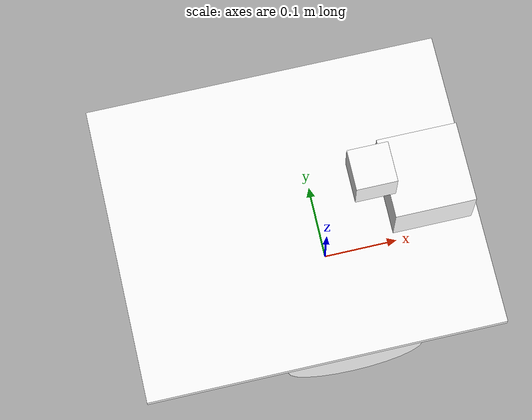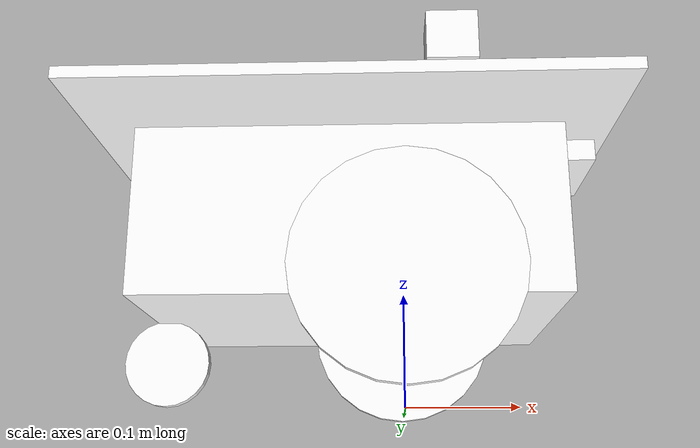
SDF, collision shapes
<?xml version='1.0'?>
<sdf version='1.6'>
  <model name='p3dx'>
    <link name='base_link'>
      <pose frame=''>0 0 0 0 -0 0</pose>
      <inertial>
        <pose frame=''>-0.049981 0 0.000673 0 -0 0</pose>
        <mass>3.51011</mass>
        <inertia>
          <ixx>3.00055</ixx>
          <ixy>0</ixy>
          <ixz>0</ixz>
          <iyy>3.00055</iyy>
          <iyz>0</iyz>
          <izz>3</izz>
        </inertia>
      </inertial>
      <self_collide>0</self_collide>
      <kinematic>0</kinematic>
      <velocity_decay/>
      <sensor type="camera" name="camera">
        <update_rate>30.0</update_rate>
        <camera name="head">
          <horizontal_fov>1.5708</horizontal_fov>
          <image>
            <width>320</width>
            <height>240</height>
            <format>R8G8B8</format>
          </image>
          <clip>
            <near>0.02</near>
            <far>300</far>
          </clip>
        </camera>
        <plugin name="camera_controller" filename="libgazebo_ros_camera.so">
          <alwaysOn>true</alwaysOn>
          <updateRate>0.0</updateRate>
          <cameraName>p3dx/camera</cameraName>
          <imageTopicName>image_raw</imageTopicName>
          <cameraInfoTopicName>camera_info</cameraInfoTopicName>
          <frameName>camera</frameName>
          <hackBaseline>0.07</hackBaseline>
          <distortionK1>0.0</distortionK1>
          <distortionK2>0.0</distortionK2>
          <distortionK3>0.0</distortionK3>
          <distortionT1>0.0</distortionT1>
          <distortionT2>0.0</distortionT2>
        </plugin>
        <pose frame=''>0.05 0 0.35 0 0.25 0</pose>
      </sensor>
      <sensor name='head_hokuyo_sensor' type='ray'>
        <visualize>0</visualize>
        <update_rate>50</update_rate>
        <ray>
          <scan>
            <horizontal>
              <samples>240</samples>
              <resolution>1</resolution>
              <min_angle>-2.0944</min_angle>
              <max_angle>2.0944</max_angle>
            </horizontal>
            <vertical>
              <samples>1</samples>
              <min_angle>0</min_angle>
              <max_angle>0</max_angle>
            </vertical>
          </scan>
          <range>
            <min>0.1</min>
            <max>5.6</max>
            <resolution>0.01</resolution>
          </range>
          <noise>
            <type>gaussian</type>
            <mean>0</mean>
            <stddev>0.01</stddev>
          </noise>
        </ray>
        <plugin name='gazebo_ros_head_hokuyo_controller' filename='libgazebo_ros_laser.so'>
          <topicName>p3dx/laser/scan</topicName>
          <frameName>lms100</frameName>
          <robotNamespace>/</robotNamespace>
        </plugin>
        <pose frame=''>0.12 0 0.26 0 -0 0</pose>
      </sensor>
      <gravity>1</gravity>
      <visual name='base_link_fixed_joint_lump__base_visual_visual_2'>
        <pose frame=''>-0.045 0 0.234 0 -0 0</pose>
        <geometry>
          <mesh>
            <scale>1 1 1</scale>
            <uri>~/RobotTraining_ROS1_ws/src/RobotTraining_ROS1/RobotTraining_P3dx_Gazebo/p3dx_description_gazebo/meshes/top.stl</uri>
          </mesh>
        </geometry>
        <cast_shadows>1</cast_shadows>
        <transparency>0</transparency>
        <material>
          <shader type='vertex'>
            <normal_map>__default__</normal_map>
          </shader>
          <ambient>0.038 0.038 0.038 1</ambient>
          <diffuse>1 1 1 1</diffuse>
          <specular>0 0 0 1</specular>
          <emissive>0 0 0 1</emissive>
          <script>
            <name>ModelPreview_3::base_link::base_link_fixed_joint_lump__base_visual_visual_2_MATERIAL_</name>
            <uri>__default__</uri>
          </script>
        </material>
      </visual>
      <visual name='base_link_fixed_joint_lump__base_visual_visual'>
        <pose frame=''>-0.045 0 0.148 0 -0 0</pose>
        <geometry>
          <mesh>
            <scale>1 1 1</scale>
            <uri>~/RobotTraining_ROS1_ws/src/RobotTraining_ROS1/RobotTraining_P3dx_Gazebo/p3dx_description_gazebo/meshes/chassis.stl</uri>
          </mesh>
        </geometry>
        <cast_shadows>1</cast_shadows>
        <transparency>0</transparency>
        <material>
          <ambient>0.851 0 0 1</ambient>
          <diffuse>1 1 1 1</diffuse>
          <specular>0 0 0 1</specular>
          <emissive>0 0 0 1</emissive>
          <script>
            <name>ModelPreview_3::base_link::base_link_fixed_joint_lump__base_visual_visual_MATERIAL_</name>
            <uri>__default__</uri>
          </script>
          <shader type='vertex'>
            <normal_map>__default__</normal_map>
          </shader>
        </material>
      </visual>
      <visual name='base_link_fixed_joint_lump__front_sonar_vis_visual_1'>
        <pose frame=''>0.109 0 0.209 0 -0 0</pose>
        <geometry>
          <mesh>
            <scale>1 1 1</scale>
            <uri>~/RobotTraining_ROS1_ws/src/RobotTraining_ROS1/RobotTraining_P3dx_Gazebo/p3dx_description_gazebo/meshes/front_sonar.stl</uri>
          </mesh>
        </geometry>
        <cast_shadows>1</cast_shadows>
        <transparency>0</transparency>
        <material>
          <shader type='vertex'>
            <normal_map>__default__</normal_map>
          </shader>
          <ambient>0.715 0.583 0.21 1</ambient>
          <diffuse>1 1 1 1</diffuse>
          <specular>0 0 0 1</specular>
          <emissive>0 0 0 1</emissive>
          <script>
            <name>ModelPreview_3::base_link::base_link_fixed_joint_lump__front_sonar_vis_visual_1_MATERIAL_</name>
            <uri>__default__</uri>
          </script>
        </material>
      </visual>
      <visual name='base_link_fixed_joint_lump__lms100_visual_3'>
        <pose frame=''>0.12 0 0.26 0 -0 0</pose>
        <geometry>
          <mesh>
            <scale>1 1 1</scale>
            <uri>~/RobotTraining_ROS1_ws/src/RobotTraining_ROS1/RobotTraining_P3dx_Gazebo/p3dx_description_gazebo/meshes/lms100.dae</uri>
          </mesh>
        </geometry>
        <material>
          <script>
            <uri>__default__</uri>
            <name>__default__</name>
          </script>
          <shader type='vertex'>
            <normal_map>__default__</normal_map>
          </shader>
        </material>
        <cast_shadows>1</cast_shadows>
        <transparency>0</transparency>
      </visual>
      <visual name='base_link_fixed_joint_lump__camera_visual_4'>
        <pose frame=''>0.05 0.0 0.35 0 0.25 0</pose>
        <geometry>
          <box>
            <size>0.05 0.05 0.05</size>
          </box>
        </geometry>
        <material>
          <script>
            <uri>__default__</uri>
            <name>__default__</name>
          </script>
          <shader type='vertex'>
            <normal_map>__default__</normal_map>
          </shader>
        </material>
        <cast_shadows>1</cast_shadows>
        <transparency>0</transparency>
      </visual>
      <collision name='base_link_collision'>
        <laser_retro>0</laser_retro>
        <max_contacts>10</max_contacts>
        <pose frame=''>-0.045 0 0.145 0 -0 0</pose>
        <geometry>
          <box>
            <size>0.35 0.25 0.14</size>
          </box>
        </geometry>
        <surface>
          <friction>
            <ode>
              <mu>1</mu>
              <mu2>1</mu2>
              <fdir1>0 0 0</fdir1>
              <slip1>0</slip1>
              <slip2>0</slip2>
            </ode>
            <torsional>
              <coefficient>1</coefficient>
              <patch_radius>0</patch_radius>
              <surface_radius>0</surface_radius>
              <use_patch_radius>1</use_patch_radius>
              <ode>
                <slip>0</slip>
              </ode>
            </torsional>
          </friction>
          <bounce>
            <restitution_coefficient>0</restitution_coefficient>
            <threshold>1e+06</threshold>
          </bounce>
          <contact>
            <collide_without_contact>0</collide_without_contact>
            <collide_without_contact_bitmask>1</collide_without_contact_bitmask>
            <collide_bitmask>1</collide_bitmask>
            <ode>
              <soft_cfm>0</soft_cfm>
              <soft_erp>0.2</soft_erp>
              <kp>1e+13</kp>
              <kd>1</kd>
              <max_vel>0.01</max_vel>
              <min_depth>0</min_depth>
            </ode>
            <bullet>
              <split_impulse>1</split_impulse>
              <split_impulse_penetration_threshold>-0.01</split_impulse_penetration_threshold>
              <soft_cfm>0</soft_cfm>
              <soft_erp>0.2</soft_erp>
              <kp>1e+13</kp>
              <kd>1</kd>
            </bullet>
          </contact>
        </surface>
      </collision>
      <collision name='base_link_fixed_joint_lump__lms100_collision_3'>
        <laser_retro>0</laser_retro>
        <max_contacts>10</max_contacts>
        <pose frame=''>0.12 0 0.26 0 -0 0</pose>
        <geometry>
          <box>
            <size>0.1 0.1 0.1</size>
          </box>
        </geometry>
        <surface>
          <friction>
            <ode>
              <mu>1</mu>
              <mu2>1</mu2>
              <fdir1>0 0 0</fdir1>
              <slip1>0</slip1>
              <slip2>0</slip2>
            </ode>
            <torsional>
              <coefficient>1</coefficient>
              <patch_radius>0</patch_radius>
              <surface_radius>0</surface_radius>
              <use_patch_radius>1</use_patch_radius>
              <ode>
                <slip>0</slip>
              </ode>
            </torsional>
          </friction>
          <bounce>
            <restitution_coefficient>0</restitution_coefficient>
            <threshold>1e+06</threshold>
          </bounce>
          <contact>
            <collide_without_contact>0</collide_without_contact>
            <collide_without_contact_bitmask>1</collide_without_contact_bitmask>
            <collide_bitmask>1</collide_bitmask>
            <ode>
              <soft_cfm>0</soft_cfm>
              <soft_erp>0.2</soft_erp>
              <kp>1e+13</kp>
              <kd>1</kd>
              <max_vel>0.01</max_vel>
              <min_depth>0</min_depth>
            </ode>
            <bullet>
              <split_impulse>1</split_impulse>
              <split_impulse_penetration_threshold>-0.01</split_impulse_penetration_threshold>
              <soft_cfm>0</soft_cfm>
              <soft_erp>0.2</soft_erp>
              <kp>1e+13</kp>
              <kd>1</kd>
            </bullet>
          </contact>
        </surface>
      </collision>
      <collision name='base_link_fixed_joint_lump__front_sonar_collision_1'>
        <laser_retro>0</laser_retro>
        <max_contacts>10</max_contacts>
        <pose frame=''>-0.109 0 0.209 0 -0 0</pose>
        <geometry>
          <box>
            <size>0.001 0.001 0.001</size>
          </box>
        </geometry>
        <surface>
          <friction>
            <ode>
              <mu>1</mu>
              <mu2>1</mu2>
              <fdir1>0 0 0</fdir1>
              <slip1>0</slip1>
              <slip2>0</slip2>
            </ode>
            <torsional>
              <coefficient>1</coefficient>
              <patch_radius>0</patch_radius>
              <surface_radius>0</surface_radius>
              <use_patch_radius>1</use_patch_radius>
              <ode>
                <slip>0</slip>
              </ode>
            </torsional>
          </friction>
          <bounce>
            <restitution_coefficient>0</restitution_coefficient>
            <threshold>1e+06</threshold>
          </bounce>
          <contact>
            <collide_without_contact>0</collide_without_contact>
            <collide_without_contact_bitmask>1</collide_without_contact_bitmask>
            <collide_bitmask>1</collide_bitmask>
            <ode>
              <soft_cfm>0</soft_cfm>
              <soft_erp>0.2</soft_erp>
              <kp>1e+13</kp>
              <kd>1</kd>
              <max_vel>0.01</max_vel>
              <min_depth>0</min_depth>
            </ode>
            <bullet>
              <split_impulse>1</split_impulse>
              <split_impulse_penetration_threshold>-0.01</split_impulse_penetration_threshold>
              <soft_cfm>0</soft_cfm>
              <soft_erp>0.2</soft_erp>
              <kp>1e+13</kp>
              <kd>1</kd>
            </bullet>
          </contact>
        </surface>
      </collision>
      <collision name='base_link_fixed_joint_lump__top_plate_collision_2'>
        <laser_retro>0</laser_retro>
        <max_contacts>10</max_contacts>
        <pose frame=''>-0.045 0 0.234 0 -0 0</pose>
        <geometry>
          <box>
            <size>0.45 0.38 0.01</size>
          </box>
        </geometry>
        <surface>
          <friction>
            <ode>
              <mu>1</mu>
              <mu2>1</mu2>
              <fdir1>0 0 0</fdir1>
              <slip1>0</slip1>
              <slip2>0</slip2>
            </ode>
            <torsional>
              <coefficient>1</coefficient>
              <patch_radius>0</patch_radius>
              <surface_radius>0</surface_radius>
              <use_patch_radius>1</use_patch_radius>
              <ode>
                <slip>0</slip>
              </ode>
            </torsional>
          </friction>
          <bounce>
            <restitution_coefficient>0</restitution_coefficient>
            <threshold>1e+06</threshold>
          </bounce>
          <contact>
            <collide_without_contact>0</collide_without_contact>
            <collide_without_contact_bitmask>1</collide_without_contact_bitmask>
            <collide_bitmask>1</collide_bitmask>
            <ode>
              <soft_cfm>0</soft_cfm>
              <soft_erp>0.2</soft_erp>
              <kp>1e+13</kp>
              <kd>1</kd>
              <max_vel>0.01</max_vel>
              <min_depth>0</min_depth>
            </ode>
            <bullet>
              <split_impulse>1</split_impulse>
              <split_impulse_penetration_threshold>-0.01</split_impulse_penetration_threshold>
              <soft_cfm>0</soft_cfm>
              <soft_erp>0.2</soft_erp>
              <kp>1e+13</kp>
              <kd>1</kd>
            </bullet>
          </contact>
        </surface>
      </collision>
      <collision name='base_link_fixed_joint_lump__camera_collision_4'>
        <laser_retro>0</laser_retro>
        <max_contacts>10</max_contacts>
        <pose frame=''>0.05 0.0 0.35 0 0 0</pose>
        <geometry>
          <box>
            <size>0.05 0.05 0.05</size>
          </box>
        </geometry>
        <surface>
          <friction>
            <ode>
              <mu>1</mu>
              <mu2>1</mu2>
              <fdir1>0 0 0</fdir1>
              <slip1>0</slip1>
              <slip2>0</slip2>
            </ode>
            <torsional>
              <coefficient>1</coefficient>
              <patch_radius>0</patch_radius>
              <surface_radius>0</surface_radius>
              <use_patch_radius>1</use_patch_radius>
              <ode>
                <slip>0</slip>
              </ode>
            </torsional>
          </friction>
          <bounce>
            <restitution_coefficient>0</restitution_coefficient>
            <threshold>1e+06</threshold>
          </bounce>
          <contact>
            <collide_without_contact>0</collide_without_contact>
            <collide_without_contact_bitmask>1</collide_without_contact_bitmask>
            <collide_bitmask>1</collide_bitmask>
            <ode>
              <soft_cfm>0</soft_cfm>
              <soft_erp>0.2</soft_erp>
              <kp>1e+13</kp>
              <kd>1</kd>
              <max_vel>0.01</max_vel>
              <min_depth>0</min_depth>
            </ode>
            <bullet>
              <split_impulse>1</split_impulse>
              <split_impulse_penetration_threshold>-0.01</split_impulse_penetration_threshold>
              <soft_cfm>0</soft_cfm>
              <soft_erp>0.2</soft_erp>
              <kp>1e+13</kp>
              <kd>1</kd>
            </bullet>
          </contact>
        </surface>
      </collision>
    </link>
    <link name='center_wheel'>
      <pose frame=''>-0.211 0 0.039 0 -0 0</pose>
      <inertial>
        <pose frame=''>-0.000318 0 -9.1e-05 0 -0 0</pose>
        <mass>0.11</mass>
        <inertia>
          <ixx>0.0248235</ixx>
          <ixy>0</ixy>
          <ixz>0.00100543</ixz>
          <iyy>0.0304364</iyy>
          <iyz>0</iyz>
          <izz>0.0235281</izz>
        </inertia>
      </inertial>
      <self_collide>0</self_collide>
      <kinematic>0</kinematic>
      <velocity_decay/>
      <gravity>1</gravity>
      <visual name='center_wheel_fixed_joint_lump__base_visual_visual'>
        <pose frame=''>0 0 0 0 -0 0</pose>
        <geometry>
          <mesh>
            <scale>1 1 1</scale>
            <uri>~/RobotTraining_ROS1_ws/src/RobotTraining_ROS1/RobotTraining_P3dx_Gazebo/p3dx_description_gazebo/meshes/center_wheel.stl</uri>
          </mesh>
        </geometry>
        <cast_shadows>1</cast_shadows>
        <transparency>0</transparency>
        <material>
          <ambient>0.117 0.117 0.117 1</ambient>
          <diffuse>1 1 1 1</diffuse>
          <specular>0 0 0 1</specular>
          <emissive>0 0 0 1</emissive>
          <script>
            <name>ModelPreview_1::center_wheel::center_wheel_fixed_joint_lump__base_visual_visual_MATERIAL_</name>
            <uri>__default__</uri>
          </script>
          <shader type='vertex'>
            <normal_map>__default__</normal_map>
          </shader>
        </material>
      </visual>
      <visual name='center_wheel_fixed_joint_lump__base_visual_visual_1'>
        <pose frame=''>-0.0035 0 -0.001 0 -0 0</pose>
        <geometry>
          <mesh>
            <scale>1 1 1</scale>
            <uri>~/RobotTraining_ROS1_ws/src/RobotTraining_ROS1/RobotTraining_P3dx_Gazebo/p3dx_description_gazebo/meshes/center_hubcap.stl</uri>
          </mesh>
        </geometry>
        <cast_shadows>1</cast_shadows>
        <transparency>0</transparency>
        <material>
          <shader type='vertex'>
            <normal_map>__default__</normal_map>
          </shader>
          <ambient>0.5 0.5 0.5 1</ambient>
          <diffuse>1 1 1 1</diffuse>
          <specular>0 0 0 1</specular>
          <emissive>0 0 0 1</emissive>
          <script>
            <name>ModelPreview_1::center_wheel::center_wheel_fixed_joint_lump__base_visual_visual_1_MATERIAL_</name>
            <uri>__default__</uri>
          </script>
        </material>
      </visual>
      <collision name='center_wheel_fixed_joint_lump__center_hubcap_collision_1'>
        <laser_retro>0</laser_retro>
        <max_contacts>10</max_contacts>
        <pose frame=''>-0.0035 0 -0.001 0 -0 0</pose>
        <geometry>
          <box>
            <size>0.001 0.001 0.001</size>
          </box>
        </geometry>
        <surface>
          <friction>
            <ode>
              <mu>1</mu>
              <mu2>1</mu2>
              <fdir1>0 0 0</fdir1>
              <slip1>0</slip1>
              <slip2>0</slip2>
            </ode>
            <torsional>
              <coefficient>1</coefficient>
              <patch_radius>0</patch_radius>
              <surface_radius>0</surface_radius>
              <use_patch_radius>1</use_patch_radius>
              <ode>
                <slip>0</slip>
              </ode>
            </torsional>
          </friction>
          <bounce>
            <restitution_coefficient>0</restitution_coefficient>
            <threshold>1e+06</threshold>
          </bounce>
          <contact>
            <collide_without_contact>0</collide_without_contact>
            <collide_without_contact_bitmask>1</collide_without_contact_bitmask>
            <collide_bitmask>1</collide_bitmask>
            <ode>
              <soft_cfm>0</soft_cfm>
              <soft_erp>0.2</soft_erp>
              <kp>1e+13</kp>
              <kd>1</kd>
              <max_vel>0.01</max_vel>
              <min_depth>0</min_depth>
            </ode>
            <bullet>
              <split_impulse>1</split_impulse>
              <split_impulse_penetration_threshold>-0.01</split_impulse_penetration_threshold>
              <soft_cfm>0</soft_cfm>
              <soft_erp>0.2</soft_erp>
              <kp>1e+13</kp>
              <kd>1</kd>
            </bullet>
          </contact>
        </surface>
      </collision>
      <collision name='center_wheel_collision'>
        <laser_retro>0</laser_retro>
        <max_contacts>10</max_contacts>
        <pose frame=''>0 0 0 -1.5708 0 0</pose>
        <geometry>
          <cylinder>
            <radius>0.0375</radius>
            <length>0.01</length>
          </cylinder>
        </geometry>
        <surface>
          <friction>
            <ode>
              <mu>10</mu>
              <mu2>10</mu2>
              <fdir1>0 0 0</fdir1>
              <slip1>0</slip1>
              <slip2>0</slip2>
            </ode>
            <torsional>
              <coefficient>1</coefficient>
              <patch_radius>0</patch_radius>
              <surface_radius>0</surface_radius>
              <use_patch_radius>1</use_patch_radius>
              <ode>
                <slip>0</slip>
              </ode>
            </torsional>
          </friction>
          <bounce>
            <restitution_coefficient>0</restitution_coefficient>
            <threshold>1e+06</threshold>
          </bounce>
          <contact>
            <collide_without_contact>0</collide_without_contact>
            <collide_without_contact_bitmask>1</collide_without_contact_bitmask>
            <collide_bitmask>1</collide_bitmask>
            <ode>
              <soft_cfm>0</soft_cfm>
              <soft_erp>0.2</soft_erp>
              <kp>1e+06</kp>
              <kd>1</kd>
              <max_vel>0.01</max_vel>
              <min_depth>0</min_depth>
            </ode>
            <bullet>
              <split_impulse>1</split_impulse>
              <split_impulse_penetration_threshold>-0.01</split_impulse_penetration_threshold>
              <soft_cfm>0</soft_cfm>
              <soft_erp>0.2</soft_erp>
              <kp>1e+06</kp>
              <kd>1</kd>
            </bullet>
          </contact>
        </surface>
      </collision>
    </link>
    <link name='p3dx_left_wheel'>
      <pose frame=''>-0 0.158 0.091 0 -0 0</pose>
      <inertial>
        <pose frame=''>0 0 0 0 -0 0</pose>
        <mass>0.51</mass>
        <inertia>
          <ixx>0.0248235</ixx>
          <ixy>0</ixy>
          <ixz>0</ixz>
          <iyy>0.0304363</iyy>
          <iyz>0</iyz>
          <izz>0.023528</izz>
        </inertia>
      </inertial>
      <self_collide>0</self_collide>
      <kinematic>0</kinematic>
      <velocity_decay/>
      <gravity>1</gravity>
      <visual name='p3dx_left_wheel_fixed_joint_lump__base_visual_visual'>
        <pose frame=''>0 0 0 0 -0 0</pose>
        <geometry>
          <mesh>
            <scale>1 1 1</scale>
            <uri>~/RobotTraining_ROS1_ws/src/RobotTraining_ROS1/RobotTraining_P3dx_Gazebo/p3dx_description_gazebo/meshes/left_wheel.stl</uri>
          </mesh>
        </geometry>
        <cast_shadows>1</cast_shadows>
        <transparency>0</transparency>
        <material>
          <ambient>0.117 0.117 0.117 1</ambient>
          <diffuse>1 1 1 1</diffuse>
          <specular>0 0 0 1</specular>
          <emissive>0 0 0 1</emissive>
          <script>
            <name>ModelPreview_1::p3dx_left_wheel::p3dx_left_wheel_fixed_joint_lump__base_visual_visual_MATERIAL_</name>
            <uri>__default__</uri>
          </script>
          <shader type='vertex'>
            <normal_map>__default__</normal_map>
          </shader>
        </material>
      </visual>
      <visual name='p3dx_left_wheel_fixed_joint_lump__base_visual_visual_1'>
        <pose frame=''>0 0 0 0 -0 0</pose>
        <geometry>
          <mesh>
            <scale>1 1 1</scale>
            <uri>~/RobotTraining_ROS1_ws/src/RobotTraining_ROS1/RobotTraining_P3dx_Gazebo/p3dx_description_gazebo/meshes/left_hubcap.stl</uri>
          </mesh>
        </geometry>
        <cast_shadows>1</cast_shadows>
        <transparency>0</transparency>
        <material>
          <shader type='vertex'>
            <normal_map>__default__</normal_map>
          </shader>
          <ambient>1 0.811 0.151 1</ambient>
          <diffuse>1 1 1 1</diffuse>
          <specular>0 0 0 1</specular>
          <emissive>0 0 0 1</emissive>
          <script>
            <name>ModelPreview_1::p3dx_left_wheel::p3dx_left_wheel_fixed_joint_lump__base_visual_visual_1_MATERIAL_</name>
            <uri>__default__</uri>
          </script>
        </material>
      </visual>
      <collision name='p3dx_left_wheel_collision'>
        <laser_retro>0</laser_retro>
        <max_contacts>10</max_contacts>
        <pose frame=''>0 0 0 -1.5708 0 0</pose>
        <geometry>
          <cylinder>
            <radius>0.09</radius>
            <length>0.01</length>
          </cylinder>
        </geometry>
        <surface>
          <friction>
            <ode>
              <mu>0.5</mu>
              <mu2>50</mu2>
              <fdir1>0 0 0</fdir1>
              <slip1>0</slip1>
              <slip2>0</slip2>
            </ode>
            <torsional>
              <coefficient>1</coefficient>
              <patch_radius>0</patch_radius>
              <surface_radius>0</surface_radius>
              <use_patch_radius>1</use_patch_radius>
              <ode>
                <slip>0</slip>
              </ode>
            </torsional>
          </friction>
          <bounce>
            <restitution_coefficient>0</restitution_coefficient>
            <threshold>1e+06</threshold>
          </bounce>
          <contact>
            <collide_without_contact>0</collide_without_contact>
            <collide_without_contact_bitmask>1</collide_without_contact_bitmask>
            <collide_bitmask>1</collide_bitmask>
            <ode>
              <soft_cfm>0</soft_cfm>
              <soft_erp>0.2</soft_erp>
              <kp>1e+08</kp>
              <kd>1</kd>
              <max_vel>0.01</max_vel>
              <min_depth>0</min_depth>
            </ode>
            <bullet>
              <split_impulse>1</split_impulse>
              <split_impulse_penetration_threshold>-0.01</split_impulse_penetration_threshold>
              <soft_cfm>0</soft_cfm>
              <soft_erp>0.2</soft_erp>
              <kp>1e+08</kp>
              <kd>1</kd>
            </bullet>
          </contact>
        </surface>
      </collision>
      <collision name='p3dx_left_wheel_fixed_joint_lump__p3dx_left_hubcap_collision_1'>
        <laser_retro>0</laser_retro>
        <max_contacts>10</max_contacts>
        <pose frame=''>0 0 0 0 -0 0</pose>
        <geometry>
          <box>
            <size>0.001 0.001 0.001</size>
          </box>
        </geometry>
        <surface>
          <friction>
            <ode>
              <mu>1</mu>
              <mu2>1</mu2>
              <fdir1>0 0 0</fdir1>
              <slip1>0</slip1>
              <slip2>0</slip2>
            </ode>
            <torsional>
              <coefficient>1</coefficient>
              <patch_radius>0</patch_radius>
              <surface_radius>0</surface_radius>
              <use_patch_radius>1</use_patch_radius>
              <ode>
                <slip>0</slip>
              </ode>
            </torsional>
          </friction>
          <bounce>
            <restitution_coefficient>0</restitution_coefficient>
            <threshold>1e+06</threshold>
          </bounce>
          <contact>
            <collide_without_contact>0</collide_without_contact>
            <collide_without_contact_bitmask>1</collide_without_contact_bitmask>
            <collide_bitmask>1</collide_bitmask>
            <ode>
              <soft_cfm>0</soft_cfm>
              <soft_erp>0.2</soft_erp>
              <kp>1e+13</kp>
              <kd>1</kd>
              <max_vel>0.01</max_vel>
              <min_depth>0</min_depth>
            </ode>
            <bullet>
              <split_impulse>1</split_impulse>
              <split_impulse_penetration_threshold>-0.01</split_impulse_penetration_threshold>
              <soft_cfm>0</soft_cfm>
              <soft_erp>0.2</soft_erp>
              <kp>1e+13</kp>
              <kd>1</kd>
            </bullet>
          </contact>
        </surface>
      </collision>
    </link>
    <link name='p3dx_right_wheel'>
      <pose frame=''>0 -0.158 0.091 0 -0 0</pose>
      <inertial>
        <pose frame=''>0 0 0 0 -0 0</pose>
        <mass>0.51</mass>
        <inertia>
          <ixx>0.0248235</ixx>
          <ixy>0</ixy>
          <ixz>0</ixz>
          <iyy>0.0304363</iyy>
          <iyz>0</iyz>
          <izz>0.023528</izz>
        </inertia>
      </inertial>
      <self_collide>0</self_collide>
      <kinematic>0</kinematic>
      <velocity_decay/>
      <gravity>1</gravity>
      <visual name='p3dx_right_wheel_fixed_joint_lump__base_visual_visual'>
        <pose frame=''>0 0 0 0 -0 0</pose>
        <geometry>
          <mesh>
            <scale>1 1 1</scale>
            <uri>~/RobotTraining_ROS1_ws/src/RobotTraining_ROS1/RobotTraining_P3dx_Gazebo/p3dx_description_gazebo/meshes/right_wheel.stl</uri>
          </mesh>
        </geometry>
        <cast_shadows>1</cast_shadows>
        <transparency>0</transparency>
        <material>
          <ambient>0.117 0.117 0.117 1</ambient>
          <diffuse>1 1 1 1</diffuse>
          <specular>0 0 0 1</specular>
          <emissive>0 0 0 1</emissive>
          <script>
            <name>ModelPreview_1::p3dx_right_wheel::p3dx_right_wheel_fixed_joint_lump__base_visual_visual_MATERIAL_</name>
            <uri>__default__</uri>
          </script>
          <shader type='vertex'>
            <normal_map>__default__</normal_map>
          </shader>
        </material>
      </visual>
      <visual name='p3dx_right_wheel_fixed_joint_lump__base_visual_visual_1'>
        <pose frame=''>0 0 0 0 -0 0</pose>
        <geometry>
          <mesh>
            <scale>1 1 1</scale>
            <uri>~/RobotTraining_ROS1_ws/src/RobotTraining_ROS1/RobotTraining_P3dx_Gazebo/p3dx_description_gazebo/meshes/right_hubcap.stl</uri>
          </mesh>
        </geometry>
        <cast_shadows>1</cast_shadows>
        <transparency>0</transparency>
        <material>
          <shader type='vertex'>
            <normal_map>__default__</normal_map>
          </shader>
          <ambient>1 0.811 0.151 1</ambient>
          <diffuse>1 1 1 1</diffuse>
          <specular>0 0 0 1</specular>
          <emissive>0 0 0 1</emissive>
          <script>
            <name>ModelPreview_1::p3dx_right_wheel::p3dx_right_wheel_fixed_joint_lump__base_visual_visual_1_MATERIAL_</name>
            <uri>__default__</uri>
          </script>
        </material>
      </visual>
      <collision name='p3dx_right_wheel_fixed_joint_lump__p3dx_right_hubcap_collision_1'>
        <laser_retro>0</laser_retro>
        <max_contacts>10</max_contacts>
        <pose frame=''>0 0 0 0 -0 0</pose>
        <geometry>
          <box>
            <size>0.001 0.001 0.001</size>
          </box>
        </geometry>
        <surface>
          <friction>
            <ode>
              <mu>1</mu>
              <mu2>1</mu2>
              <fdir1>0 0 0</fdir1>
              <slip1>0</slip1>
              <slip2>0</slip2>
            </ode>
            <torsional>
              <coefficient>1</coefficient>
              <patch_radius>0</patch_radius>
              <surface_radius>0</surface_radius>
              <use_patch_radius>1</use_patch_radius>
              <ode>
                <slip>0</slip>
              </ode>
            </torsional>
          </friction>
          <bounce>
            <restitution_coefficient>0</restitution_coefficient>
            <threshold>1e+06</threshold>
          </bounce>
          <contact>
            <collide_without_contact>0</collide_without_contact>
            <collide_without_contact_bitmask>1</collide_without_contact_bitmask>
            <collide_bitmask>1</collide_bitmask>
            <ode>
              <soft_cfm>0</soft_cfm>
              <soft_erp>0.2</soft_erp>
              <kp>1e+13</kp>
              <kd>1</kd>
              <max_vel>0.01</max_vel>
              <min_depth>0</min_depth>
            </ode>
            <bullet>
              <split_impulse>1</split_impulse>
              <split_impulse_penetration_threshold>-0.01</split_impulse_penetration_threshold>
              <soft_cfm>0</soft_cfm>
              <soft_erp>0.2</soft_erp>
              <kp>1e+13</kp>
              <kd>1</kd>
            </bullet>
          </contact>
        </surface>
      </collision>
      <collision name='p3dx_right_wheel_collision'>
        <laser_retro>0</laser_retro>
        <max_contacts>10</max_contacts>
        <pose frame=''>0 0 0 -1.5708 0 0</pose>
        <geometry>
          <cylinder>
            <radius>0.09</radius>
            <length>0.01</length>
          </cylinder>
        </geometry>
        <surface>
          <friction>
            <ode>
              <mu>0.5</mu>
              <mu2>50</mu2>
              <fdir1>0 0 0</fdir1>
              <slip1>0</slip1>
              <slip2>0</slip2>
            </ode>
            <torsional>
              <coefficient>1</coefficient>
              <patch_radius>0</patch_radius>
              <surface_radius>0</surface_radius>
              <use_patch_radius>1</use_patch_radius>
              <ode>
                <slip>0</slip>
              </ode>
            </torsional>
          </friction>
          <bounce>
            <restitution_coefficient>0</restitution_coefficient>
            <threshold>1e+06</threshold>
          </bounce>
          <contact>
            <collide_without_contact>0</collide_without_contact>
            <collide_without_contact_bitmask>1</collide_without_contact_bitmask>
            <collide_bitmask>1</collide_bitmask>
            <ode>
              <soft_cfm>0</soft_cfm>
              <soft_erp>0.2</soft_erp>
              <kp>1e+08</kp>
              <kd>1</kd>
              <max_vel>0.01</max_vel>
              <min_depth>0</min_depth>
            </ode>
            <bullet>
              <split_impulse>1</split_impulse>
              <split_impulse_penetration_threshold>-0.01</split_impulse_penetration_threshold>
              <soft_cfm>0</soft_cfm>
              <soft_erp>0.2</soft_erp>
              <kp>1e+08</kp>
              <kd>1</kd>
            </bullet>
          </contact>
        </surface>
      </collision>
    </link>
    <link name='swivel'>
      <pose frame=''>-0.185 -0 0.055 0 -0 0</pose>
      <inertial>
        <pose frame=''>0 0 0 0 -0 0</pose>
        <mass>0.1</mass>
        <inertia>
          <ixx>0.01</ixx>
          <ixy>0</ixy>
          <ixz>0</ixz>
          <iyy>0.01</iyy>
          <iyz>0</iyz>
          <izz>0.01</izz>
        </inertia>
      </inertial>
      <self_collide>0</self_collide>
      <kinematic>0</kinematic>
      <velocity_decay/>
      <gravity>1</gravity>
      <visual name='swivel_fixed_joint_lump__base_visual_visual'>
        <pose frame=''>0 0 0 0 -0 0</pose>
        <geometry>
          <mesh>
            <scale>1 1 1</scale>
            <uri>~/RobotTraining_ROS1_ws/src/RobotTraining_ROS1/RobotTraining_P3dx_Gazebo/p3dx_description_gazebo/meshes/swivel.stl</uri>
          </mesh>
        </geometry>
        <cast_shadows>1</cast_shadows>
        <transparency>0</transparency>
        <material>
          <ambient>0.5 0.5 0.5 1</ambient>
          <diffuse>1 1 1 1</diffuse>
          <specular>0 0 0 1</specular>
          <emissive>0 0 0 1</emissive>
          <script>
            <name>ModelPreview_1::swivel::swivel_fixed_joint_lump__base_visual_visual_MATERIAL_</name>
            <uri>__default__</uri>
          </script>
          <shader type='vertex'>
            <normal_map>__default__</normal_map>
          </shader>
        </material>
      </visual>
      <collision name='swivel_collision'>
        <laser_retro>0</laser_retro>
        <max_contacts>10</max_contacts>
        <pose frame=''>0 0 0 0 -0 0</pose>
        <geometry>
          <box>
            <size>0.001 0.001 0.001</size>
          </box>
        </geometry>
        <surface>
          <friction>
            <ode>
              <mu>1</mu>
              <mu2>1</mu2>
              <fdir1>0 0 0</fdir1>
              <slip1>0</slip1>
              <slip2>0</slip2>
            </ode>
            <torsional>
              <coefficient>1</coefficient>
              <patch_radius>0</patch_radius>
              <surface_radius>0</surface_radius>
              <use_patch_radius>1</use_patch_radius>
              <ode>
                <slip>0</slip>
              </ode>
            </torsional>
          </friction>
          <bounce>
            <restitution_coefficient>0</restitution_coefficient>
            <threshold>1e+06</threshold>
          </bounce>
          <contact>
            <collide_without_contact>0</collide_without_contact>
            <collide_without_contact_bitmask>1</collide_without_contact_bitmask>
            <collide_bitmask>1</collide_bitmask>
            <ode>
              <soft_cfm>0</soft_cfm>
              <soft_erp>0.2</soft_erp>
              <kp>1e+13</kp>
              <kd>1</kd>
              <max_vel>0.01</max_vel>
              <min_depth>0</min_depth>
            </ode>
            <bullet>
              <split_impulse>1</split_impulse>
              <split_impulse_penetration_threshold>-0.01</split_impulse_penetration_threshold>
              <soft_cfm>0</soft_cfm>
              <soft_erp>0.2</soft_erp>
              <kp>1e+13</kp>
              <kd>1</kd>
            </bullet>
          </contact>
        </surface>
      </collision>
    </link>
    <joint name='base_left_wheel_joint' type='revolute'>
      <parent>base_link</parent>
      <child>p3dx_left_wheel</child>
      <pose frame=''>0 0 0 0 -0 0</pose>
      <axis>
        <xyz>0 1 0</xyz>
        <use_parent_model_frame>1</use_parent_model_frame>
        <limit>
          <lower>-1e+16</lower>
          <upper>1e+16</upper>
          <effort>-1</effort>
          <velocity>-1</velocity>
        </limit>
        <dynamics>
          <spring_reference>0</spring_reference>
          <spring_stiffness>0</spring_stiffness>
          <damping>0</damping>
          <friction>0</friction>
        </dynamics>
      </axis>
      <physics>
        <ode>
          <limit>
            <cfm>0</cfm>
            <erp>0.2</erp>
          </limit>
          <suspension>
            <cfm>0</cfm>
            <erp>0.2</erp>
          </suspension>
        </ode>
      </physics>
    </joint>
    <joint name='base_right_wheel_joint' type='revolute'>
      <parent>base_link</parent>
      <child>p3dx_right_wheel</child>
      <pose frame=''>0 0 0 0 -0 0</pose>
      <axis>
        <xyz>0 1 0</xyz>
        <use_parent_model_frame>1</use_parent_model_frame>
        <limit>
          <lower>-1e+16</lower>
          <upper>1e+16</upper>
          <effort>-1</effort>
          <velocity>-1</velocity>
        </limit>
        <dynamics>
          <spring_reference>0</spring_reference>
          <spring_stiffness>0</spring_stiffness>
          <damping>0</damping>
          <friction>0</friction>
        </dynamics>
      </axis>
      <physics>
        <ode>
          <limit>
            <cfm>0</cfm>
            <erp>0.2</erp>
          </limit>
          <suspension>
            <cfm>0</cfm>
            <erp>0.2</erp>
          </suspension>
        </ode>
      </physics>
    </joint>
    <joint name='base_swivel_joint' type='revolute'>
      <parent>base_link</parent>
      <child>swivel</child>
      <pose frame=''>0 0 0 0 -0 0</pose>
      <axis>
        <xyz>0 0 1</xyz>
        <use_parent_model_frame>1</use_parent_model_frame>
        <limit>
          <lower>-1e+16</lower>
          <upper>1e+16</upper>
          <effort>-1</effort>
          <velocity>-1</velocity>
        </limit>
        <dynamics>
          <spring_reference>0</spring_reference>
          <spring_stiffness>0</spring_stiffness>
          <damping>0</damping>
          <friction>0</friction>
        </dynamics>
      </axis>
      <physics>
        <ode>
          <limit>
            <cfm>0</cfm>
            <erp>0.2</erp>
          </limit>
          <suspension>
            <cfm>0</cfm>
            <erp>0.2</erp>
          </suspension>
        </ode>
      </physics>
    </joint>
    <joint name='swivel_hubcap_joint' type='revolute'>
      <parent>swivel</parent>
      <child>center_wheel</child>
      <pose frame=''>0 0 0 0 -0 0</pose>
      <axis>
        <xyz>0 1 0</xyz>
        <use_parent_model_frame>1</use_parent_model_frame>
        <limit>
          <lower>-1e+16</lower>
          <upper>1e+16</upper>
          <effort>-1</effort>
          <velocity>-1</velocity>
        </limit>
        <dynamics>
          <spring_reference>0</spring_reference>
          <spring_stiffness>0</spring_stiffness>
          <damping>0</damping>
          <friction>0</friction>
        </dynamics>
      </axis>
      <physics>
        <ode>
          <limit>
            <cfm>0</cfm>
            <erp>0.2</erp>
          </limit>
          <suspension>
            <cfm>0</cfm>
            <erp>0.2</erp>
          </suspension>
        </ode>
      </physics>
    </joint>
    <static>0</static>
    <allow_auto_disable>1</allow_auto_disable>
    <plugin name='differential_drive_controller' filename='libgazebo_ros_diff_drive.so'>
      <alwaysOn>true</alwaysOn>
      <updateRate>100</updateRate>
      <leftJoint>base_right_wheel_joint</leftJoint>
      <rightJoint>base_left_wheel_joint</rightJoint>
      <wheelSeparation>0.39</wheelSeparation>
      <wheelDiameter>0.15</wheelDiameter>
      <torque>5</torque>
      <commandTopic>cmd_vel</commandTopic>
      <odometryTopic>odom</odometryTopic>
      <odometryFrame>odom</odometryFrame>
      <robotBaseFrame>base_link</robotBaseFrame>
      <robotNamespace>/</robotNamespace>
    </plugin>
    <plugin name='gazebo_ros_control' filename='libgazebo_ros_control.so'>
      <robotNamespace>/p3dx</robotNamespace>
    </plugin>
    <plugin name='p3d_base_controller' filename='libgazebo_ros_p3d.so'>
      <alwaysOn>true</alwaysOn>
      <updateRate>100.0</updateRate>
      <bodyName>base_link</bodyName>
      <topicName>p3dx/base_pose_ground_truth</topicName>
      <gaussianNoise>0.01</gaussianNoise>
      <frameName>map</frameName>
      <xyzOffsets>0 0 0</xyzOffsets>
      <rpyOffsets>0 0 0</rpyOffsets>
      <robotNamespace>/</robotNamespace>
    </plugin>
  </model>
</sdf>
